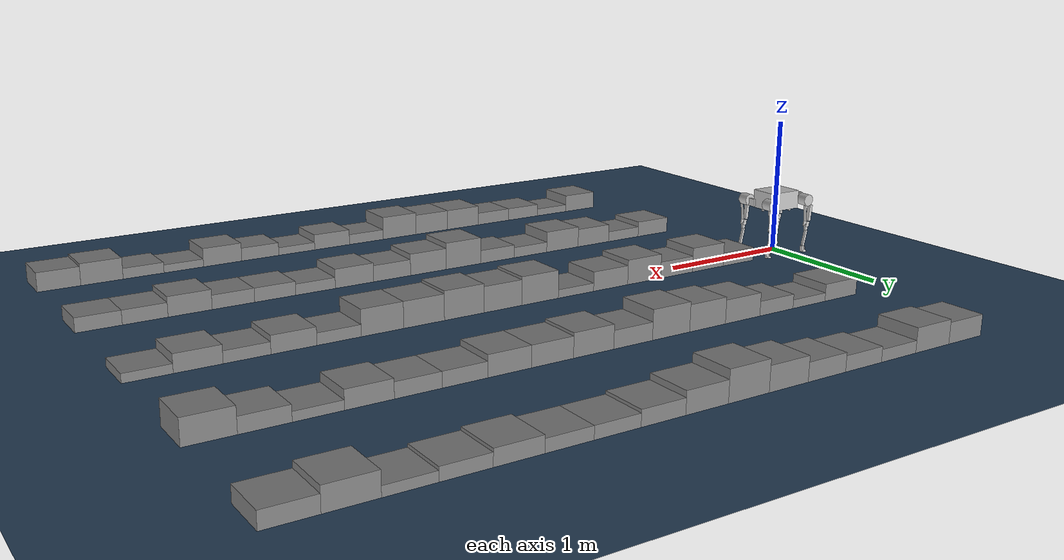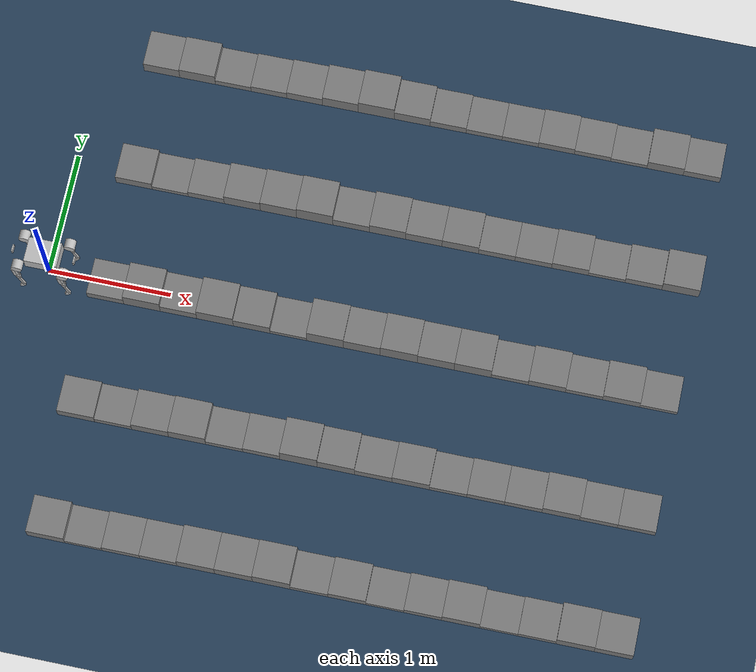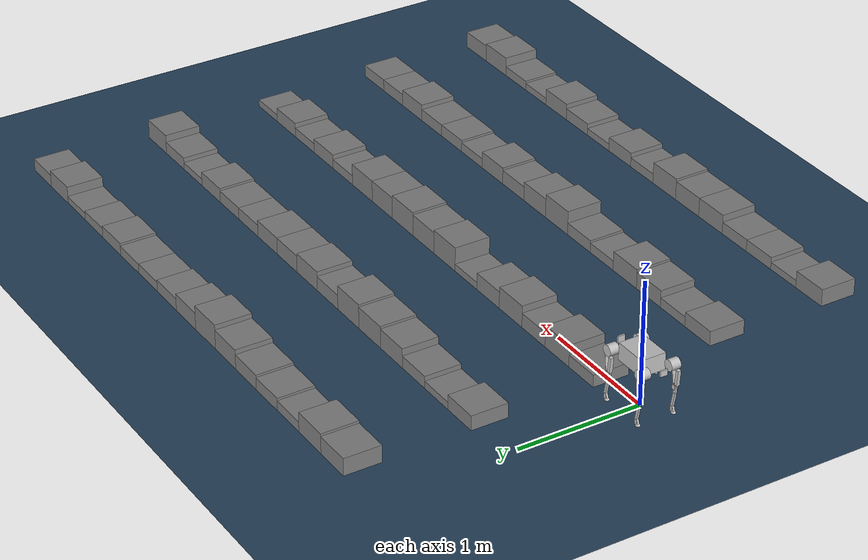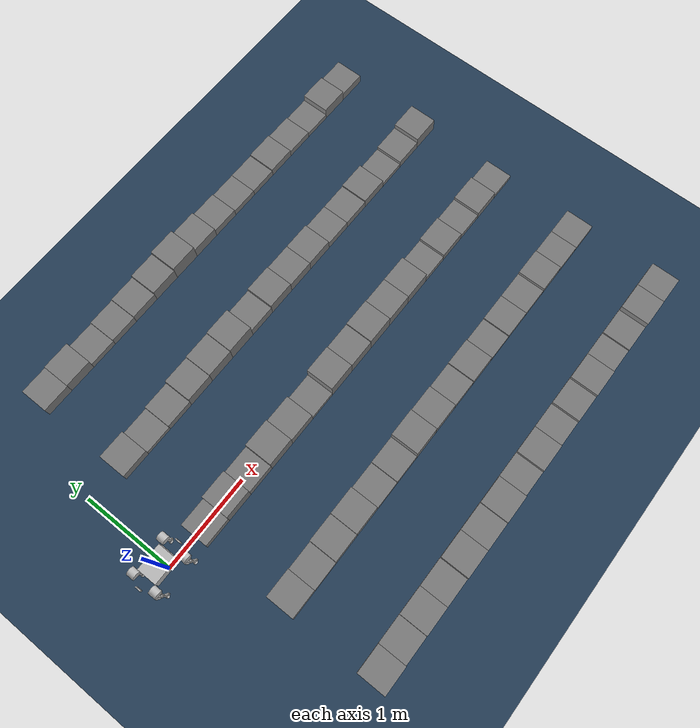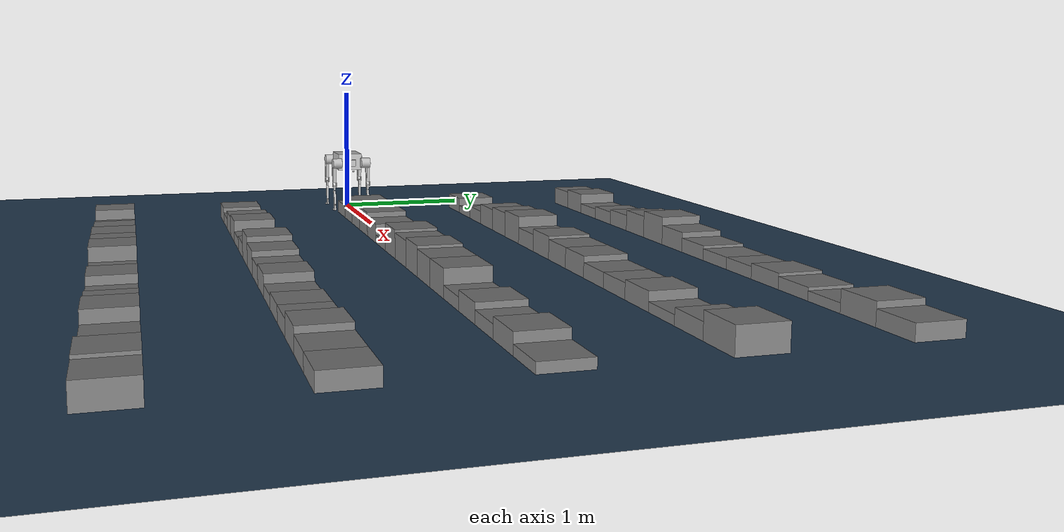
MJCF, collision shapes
<mujoco model="boxes">
  <include file="legbot.xml"/>

  <statistic center="0 0 0.1" extent="0.8"/>

  <visual>
    <headlight diffuse="0.6 0.6 0.6" ambient="0.3 0.3 0.3" specular="0 0 0"/>
    <rgba haze="0.15 0.25 0.35 1"/>
    <global azimuth="-130" elevation="-20"/>
  </visual>

  <asset>
    <texture type="skybox" builtin="gradient" rgb1="0.3 0.5 0.7" rgb2="0 0 0" width="512" height="3072"/>
    <texture type="2d" name="groundplane" builtin="checker" mark="edge" rgb1="0.2 0.3 0.4" rgb2="0.1 0.2 0.3" markrgb="0.8 0.8 0.8" width="300" height="300"/>
    <material name="groundplane" texture="groundplane" texuniform="true" texrepeat="5 5" reflectance="0.2"/>
  </asset>

  <worldbody>
    <light pos="0 0 1.5" dir="0 0 -1" directional="true"/>
    <geom name="floor" size="0 0 0.05" type="plane" material="groundplane"/>

    <!-- Rough terrain: dense bumps 3-10cm height -->
    <geom pos="0.5 -2.0 0.07" type="box" size="0.15 0.15 0.07"/>
    <geom pos="0.8 -2.0 0.03" type="box" size="0.15 0.15 0.03"/>
    <geom pos="1.1 -2.0 0.05" type="box" size="0.15 0.15 0.05"/>
    <geom pos="1.4 -2.0 0.05" type="box" size="0.15 0.15 0.05"/>
    <geom pos="1.7 -2.0 0.08" type="box" size="0.15 0.15 0.08"/>
    <geom pos="2.0 -2.0 0.08" type="box" size="0.15 0.15 0.08"/>
    <geom pos="2.3 -2.0 0.09" type="box" size="0.15 0.15 0.09"/>
    <geom pos="2.6 -2.0 0.04" type="box" size="0.15 0.15 0.04"/>
    <geom pos="2.9 -2.0 0.06" type="box" size="0.15 0.15 0.06"/>
    <geom pos="3.2 -2.0 0.03" type="box" size="0.15 0.15 0.03"/>
    <geom pos="3.5 -2.0 0.05" type="box" size="0.15 0.15 0.05"/>
    <geom pos="3.8 -2.0 0.07" type="box" size="0.15 0.15 0.07"/>
    <geom pos="4.1 -2.0 0.03" type="box" size="0.15 0.15 0.03"/>
    <geom pos="4.4 -2.0 0.04" type="box" size="0.15 0.15 0.04"/>
    <geom pos="4.7 -2.0 0.08" type="box" size="0.15 0.15 0.08"/>
    <geom pos="5.0 -2.0 0.07" type="box" size="0.15 0.15 0.07"/>

    <geom pos="0.5 -1.0 0.06" type="box" size="0.15 0.15 0.06"/>
    <geom pos="0.8 -1.0 0.04" type="box" size="0.15 0.15 0.04"/>
    <geom pos="1.1 -1.0 0.07" type="box" size="0.15 0.15 0.07"/>
    <geom pos="1.4 -1.0 0.08" type="box" size="0.15 0.15 0.08"/>
    <geom pos="1.7 -1.0 0.04" type="box" size="0.15 0.15 0.04"/>
    <geom pos="2.0 -1.0 0.05" type="box" size="0.15 0.15 0.05"/>
    <geom pos="2.3 -1.0 0.10" type="box" size="0.15 0.15 0.10"/>
    <geom pos="2.6 -1.0 0.08" type="box" size="0.15 0.15 0.08"/>
    <geom pos="2.9 -1.0 0.06" type="box" size="0.15 0.15 0.06"/>
    <geom pos="3.2 -1.0 0.07" type="box" size="0.15 0.15 0.07"/>
    <geom pos="3.5 -1.0 0.04" type="box" size="0.15 0.15 0.04"/>
    <geom pos="3.8 -1.0 0.05" type="box" size="0.15 0.15 0.05"/>
    <geom pos="4.1 -1.0 0.05" type="box" size="0.15 0.15 0.05"/>
    <geom pos="4.4 -1.0 0.07" type="box" size="0.15 0.15 0.07"/>
    <geom pos="4.7 -1.0 0.05" type="box" size="0.15 0.15 0.05"/>
    <geom pos="5.0 -1.0 0.05" type="box" size="0.15 0.15 0.05"/>

    <geom pos="0.5 0.0 0.05" type="box" size="0.15 0.15 0.05"/>
    <geom pos="0.8 0.0 0.09" type="box" size="0.15 0.15 0.09"/>
    <geom pos="1.1 0.0 0.06" type="box" size="0.15 0.15 0.06"/>
    <geom pos="1.4 0.0 0.09" type="box" size="0.15 0.15 0.09"/>
    <geom pos="1.7 0.0 0.07" type="box" size="0.15 0.15 0.07"/>
    <geom pos="2.0 0.0 0.03" type="box" size="0.15 0.15 0.03"/>
    <geom pos="2.3 0.0 0.10" type="box" size="0.15 0.15 0.10"/>
    <geom pos="2.6 0.0 0.09" type="box" size="0.15 0.15 0.09"/>
    <geom pos="2.9 0.0 0.10" type="box" size="0.15 0.15 0.10"/>
    <geom pos="3.2 0.0 0.09" type="box" size="0.15 0.15 0.09"/>
    <geom pos="3.5 0.0 0.09" type="box" size="0.15 0.15 0.09"/>
    <geom pos="3.8 0.0 0.04" type="box" size="0.15 0.15 0.04"/>
    <geom pos="4.1 0.0 0.06" type="box" size="0.15 0.15 0.06"/>
    <geom pos="4.4 0.0 0.04" type="box" size="0.15 0.15 0.04"/>
    <geom pos="4.7 0.0 0.06" type="box" size="0.15 0.15 0.06"/>
    <geom pos="5.0 0.0 0.03" type="box" size="0.15 0.15 0.03"/>

    <geom pos="0.5 1.0 0.06" type="box" size="0.15 0.15 0.06"/>
    <geom pos="0.8 1.0 0.03" type="box" size="0.15 0.15 0.03"/>
    <geom pos="1.1 1.0 0.05" type="box" size="0.15 0.15 0.05"/>
    <geom pos="1.4 1.0 0.08" type="box" size="0.15 0.15 0.08"/>
    <geom pos="1.7 1.0 0.09" type="box" size="0.15 0.15 0.09"/>
    <geom pos="2.0 1.0 0.10" type="box" size="0.15 0.15 0.10"/>
    <geom pos="2.3 1.0 0.06" type="box" size="0.15 0.15 0.06"/>
    <geom pos="2.6 1.0 0.08" type="box" size="0.15 0.15 0.08"/>
    <geom pos="2.9 1.0 0.07" type="box" size="0.15 0.15 0.07"/>
    <geom pos="3.2 1.0 0.07" type="box" size="0.15 0.15 0.07"/>
    <geom pos="3.5 1.0 0.05" type="box" size="0.15 0.15 0.05"/>
    <geom pos="3.8 1.0 0.05" type="box" size="0.15 0.15 0.05"/>
    <geom pos="4.1 1.0 0.06" type="box" size="0.15 0.15 0.06"/>
    <geom pos="4.4 1.0 0.03" type="box" size="0.15 0.15 0.03"/>
    <geom pos="4.7 1.0 0.05" type="box" size="0.15 0.15 0.05"/>
    <geom pos="5.0 1.0 0.08" type="box" size="0.15 0.15 0.08"/>

    <geom pos="0.5 2.0 0.07" type="box" size="0.15 0.15 0.07"/>
    <geom pos="0.8 2.0 0.08" type="box" size="0.15 0.15 0.08"/>
    <geom pos="1.1 2.0 0.04" type="box" size="0.15 0.15 0.04"/>
    <geom pos="1.4 2.0 0.05" type="box" size="0.15 0.15 0.05"/>
    <geom pos="1.7 2.0 0.06" type="box" size="0.15 0.15 0.06"/>
    <geom pos="2.0 2.0 0.08" type="box" size="0.15 0.15 0.08"/>
    <geom pos="2.3 2.0 0.10" type="box" size="0.15 0.15 0.10"/>
    <geom pos="2.6 2.0 0.07" type="box" size="0.15 0.15 0.07"/>
    <geom pos="2.9 2.0 0.05" type="box" size="0.15 0.15 0.05"/>
    <geom pos="3.2 2.0 0.04" type="box" size="0.15 0.15 0.04"/>
    <geom pos="3.5 2.0 0.04" type="box" size="0.15 0.15 0.04"/>
    <geom pos="3.8 2.0 0.05" type="box" size="0.15 0.15 0.05"/>
    <geom pos="4.1 2.0 0.04" type="box" size="0.15 0.15 0.04"/>
    <geom pos="4.4 2.0 0.03" type="box" size="0.15 0.15 0.03"/>
    <geom pos="4.7 2.0 0.07" type="box" size="0.15 0.15 0.07"/>
    <geom pos="5.0 2.0 0.05" type="box" size="0.15 0.15 0.05"/>
  </worldbody>
</mujoco>

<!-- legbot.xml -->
<mujoco model="legbot">
  <compiler angle="radian" meshdir="meshes/" />
  <option cone="elliptic" impratio="100" />
  <default>
    <material specular="0" shininess="0.25"/>
    <default class="vita">
      <geom friction="0.4" margin="0.001" condim="3" />
      <joint axis="0 1 0" damping="0.1" armature="0.0043" frictionloss="0.2" />
      <motor forcerange="-16 16" />
      <default class="R_hip_joint">
        <joint
                    axis="1 0 0"
                    range="-0.73304 0.73304"
                    actuatorfrcrange="-16 16"
                    limited="true"
                />
      </default>
      <default class="L_hip_joint">
        <joint
                    axis="1 0 0"
                    range="-0.73304 0.73304"
                    actuatorfrcrange="-16 16"
                    limited="true"
                />
      </default>
      <default class="F_thigh_joint">
        <joint range="-1.559 3.1298" actuatorfrcrange="-16 16" limited="true" />
      </default>
      <default class="R_thigh_joint">
        <joint
                    range="-0.51181 4.177"
                    actuatorfrcrange="-16 16"
                    limited="true"
                />
      </default>
      <default class="calf_joint">
        <joint
                    range="-2.6387 -0.7854"
                    actuatorfrcrange="-32 32"
                    limited="true"
                    damping="0.1"
                    armature="0.04"
                    frictionloss="0.2"
                />
        <motor forcerange="-32 32" />
      </default>
      <default class="visual">
        <geom type="mesh" contype="0" conaffinity="0" group="2" density="0" />
      </default>
      <default class="collision">
        <geom group="3" rgba="0.752941 0.752941 0.752941 1" />
        <default class="foot">
          <geom size="0.021" quat="0.707107 -0.707107 0 0" pos="0 0 0" />
        </default>
      </default>
    </default>
  </default>
  <asset>
    <mesh name="base_link" file="base_link.STL" />
    <mesh name="FR_hip" file="FR_hip.STL" />
    <mesh name="FR_thigh" file="FR_thigh.STL" />
    <mesh name="FR_calf" file="FR_calf.STL" />
    <mesh name="FR_foot" file="FR_foot.STL" />
    <mesh name="FL_hip" file="FL_hip.STL" />
    <mesh name="FL_thigh" file="FL_thigh.STL" />
    <mesh name="FL_calf" file="FL_calf.STL" />
    <mesh name="FL_foot" file="FL_foot.STL" />
    <mesh name="RR_hip" file="RR_hip.STL" />
    <mesh name="RR_thigh" file="RR_thigh.STL" />
    <mesh name="RR_calf" file="RR_calf.STL" />
    <mesh name="RR_foot" file="RR_foot.STL" />
    <mesh name="RL_hip" file="RL_hip.STL" />
    <mesh name="RL_thigh" file="RL_thigh.STL" />
    <mesh name="RL_calf" file="RL_calf.STL" />
    <mesh name="RL_foot" file="RL_foot.STL" />
  </asset>
  <worldbody>
    <light name="spotlight" mode="targetbodycom" target="base" pos="0 -1 2" cutoff="30"/>

    <body name="base" pos="0 0 0.4" childclass="vita">
      <inertial
                pos="-0.005 0 0"
                mass="6.583964"
                fullinertia="0.044277 0.105409 0.091875 -0.000146 -0.024292 -0.000032"
            />
      <freejoint name="joint_fixed_world" />
      <site name="trunk_imu" pos="0 0 0" />
        <geom
                type="mesh"
                rgba="0.752941 0.752941 0.752941 1"
                mesh="base_link"
                class="visual"
            />
      <geom
                name="collision_middle_box"
                size="0.133329 0.101205 0.068913"
                pos="0 0 0.004583"
                type="box"
                class="collision"
            />
      <geom
                name="collision_front_dangban_box"
                size="0.0058255 0.029011 0.029011"
                pos="0.247938 0 0.006492"
                type="box"
                class="collision"
            />
      <geom
                name="collision_back_dangban_box"
                size="0.0058255 0.029011 0.023818"
                pos="-0.249278 0 0.006492"
                type="box"
                class="collision"
            />
      <geom
                name="collision_low_bar_FL_box"
                size="0.008 0.008 0.0065"
                pos="0.083 0.042 -0.086"
                type="box"
                class="collision"
            />
      <geom
                name="collision_low_bar_FR_box"
                size="0.008 0.008 0.0065"
                pos="0.083 -0.042 -0.086"
                type="box"
                class="collision"
            />
      <geom
                name="collision_low_bar_RL_box"
                size="0.008 0.008 0.0065"
                pos="-0.108 0.042 -0.086"
                type="box"
                class="collision"
            />
      <geom
                name="collision_low_bar_RR_box"
                size="0.008 0.008 0.0065"
                pos="-0.108 -0.042 -0.086"
                type="box"
                class="collision"
            />
      <body name="FR_hip" pos="0.18453 -0.051 0">
        <inertial
                    pos="-0.027882 0.015355 0"
                    quat="-0.137609 0.678417 0.233155 0.682973"
                    mass="0.079643"
                    diaginertia="8.72171e-05 7.7874e-05 2.29089e-05"
                />
        <joint name="FR_hip_joint" class="R_hip_joint" />
        <geom
                    type="mesh"
                    rgba="0.898039 0.917647 0.929412 1"
                    mesh="FR_hip"
                    class="visual"
                />
        <body name="FR_thigh" pos="0 -0.0975 0">
          <inertial
                        pos="-0.000498 0.038065 -0.024467"
                        quat="0.975282 -0.219111 0.024734 0.0142991"
                        mass="1.55038"
                        diaginertia="0.00679074 0.00586921 0.00204705"
                    />
          <joint name="FR_thigh_joint" class="F_thigh_joint" />
          <geom
                        type="mesh"
                        rgba="0.498039 0.498039 0.498039 1"
                        mesh="FR_thigh"
                        class="visual"
                    />
          <geom
                        name="collision_mainlink_box"
                        size="0.0129095 0.013 0.06282"
                        pos="-0.029488 -0.000724 -0.10287"
                        quat="0.999071 0 -0.0430946 0"
                        type="box"
                        class="collision"
                    />
          <geom
                        name="collision_self_check_box"
                        size="0.00126 0.013 0.0627725"
                        pos="0.01289 -0.000372 -0.102949"
                        quat="0.997989 0 0.063395 0"
                        type="box"
                        class="collision"
                    />
          <geom
                        name="collision_motor_cylinder"
                        size="0.044 0.038455"
                        pos="0 0.02351 -0.000177"
                        quat="-0.707107 0.707107 0 0"
                        type="cylinder"
                        class="collision"
                    />
          <geom
                        name="collision_revo_left_box"
                        size="0.015 0.002 0.02"
                        pos="-0.00614 0.014268 -0.188644"
                        quat="0.995396 0 -0.0958456 0"
                        type="box"
                        class="collision"
                    />
          <geom
                        name="collision_revo_right_box"
                        size="0.015 0.002 0.02"
                        pos="-0.00614 -0.014448 -0.188644"
                        quat="0.995396 0 -0.0958456 0"
                        type="box"
                        class="collision"
                    />
          <body name="FR_calf" pos="0 0 -0.1985">
            <inertial
                            pos="0.00261631 0 -0.125302"
                            quat="0.706944 -0.0151852 -0.0151852 0.706944"
                            mass="0.183986"
                            diaginertia="0.00125035 0.0012368 3.55485e-05"
                        />
            <joint name="FR_calf_joint" class="calf_joint" />
            <geom
                            type="mesh"
                            rgba="0.498039 0.498039 0.498039 1"
                            mesh="FR_calf"
                            class="visual"
                        />
            <geom
                            name="collision_upper_box"
                            size="0.012 0.007644 0.0242675"
                            pos="0.018049 0 -0.186508"
                            quat="0.998889 0 0.047125 0"
                            type="box"
                            class="collision"
                        />
            <geom
                            size="0.01 0.009 0.06"
                            pos="0.00376 0 -0.099894"
                            quat="0.994686 0 -0.102956 0"
                            type="box"
                            class="collision"
                        />
            <geom
                            name="collision_lower_box"
                            size="0.014 0.007644 0.02"
                            pos="-0.005451 0 -0.017378"
                            quat="0.999978 0 0.00661145 0"
                            type="box"
                            class="collision"
                        />
            <geom
                            name="collision_backprotect_box"
                            size="0.002 0.007644 0.02"
                            pos="-0.001309 0 -0.175631"
                            quat="0.981769 0 0.19008 0"
                            type="box"
                            class="collision"
                        />
            <geom
                            pos="0 0 -0.214"
                            quat="1 0 0 0"
                            type="mesh"
                            rgba="0.498039 0.498039 0.498039 1"
                            mesh="FR_foot"
                            class="visual"
                        />
            <body name="FR_foot" pos="0 0 -0.214">
              <geom class="foot" name="FR" />
            </body>
          </body>
        </body>
      </body>
      <body name="FL_hip" pos="0.18453 0.051 0">
        <inertial
                    pos="-0.027882 -0.015355 0"
                    quat="0.137609 0.678417 -0.233155 0.682973"
                    mass="0.079643"
                    diaginertia="8.72171e-05 7.7874e-05 2.29089e-05"
                />
        <joint name="FL_hip_joint" class="L_hip_joint" />
        <geom type="mesh" rgba="1 1 1 1" mesh="FL_hip" class="visual" />
        <body name="FL_thigh" pos="0 0.0975 0">
          <inertial
                        pos="-0.000498 -0.038065 -0.024467"
                        quat="0.975282 0.219111 0.024734 -0.0142991"
                        mass="1.55038"
                        diaginertia="0.00679074 0.00586921 0.00204705"
                    />
          <joint name="FL_thigh_joint" class="F_thigh_joint" />
          <geom
                        type="mesh"
                        rgba="0.498039 0.498039 0.498039 1"
                        mesh="FL_thigh"
                        class="visual"
                    />
          <geom
                        size="0.0129095 0.013 0.06282"
                        pos="-0.029488 0.000724 -0.10287"
                        quat="0.999071 0 -0.0430946 0"
                        type="box"
                        class="collision"
                    />
          <geom
                        size="0.00126 0.013 0.0627725"
                        pos="0.01289 0.000372 -0.102949"
                        quat="0.997989 0 0.063395 0"
                        type="box"
                        class="collision"
                    />
          <geom
                        size="0.044 0.038455"
                        pos="0 -0.02351 -0.000177"
                        quat="-0.707107 0.707107 0 0"
                        type="cylinder"
                        class="collision"
                    />
          <geom
                        size="0.015 0.002 0.02"
                        pos="-0.00614 -0.014268 -0.188644"
                        quat="0.995396 0 -0.0958456 0"
                        type="box"
                        class="collision"
                    />
          <geom
                        size="0.015 0.002 0.02"
                        pos="-0.00614 0.014448 -0.188644"
                        quat="0.995396 0 -0.0958456 0"
                        type="box"
                        class="collision"
                    />
          <body name="FL_calf" pos="0 0 -0.1985">
            <inertial
                            pos="0.00261631 0 -0.125302"
                            quat="0.706944 -0.0151852 -0.0151852 0.706944"
                            mass="0.183986"
                            diaginertia="0.00125035 0.0012368 3.55485e-05"
                        />
            <joint name="FL_calf_joint" class="calf_joint" />
            <geom
                            type="mesh"
                            rgba="0.498039 0.498039 0.498039 1"
                            mesh="FL_calf"
                            class="visual"
                        />
            <geom
                            size="0.012 0.007644 0.0242675"
                            pos="0.018049 0 -0.186508"
                            quat="0.998889 0 0.047125 0"
                            type="box"
                            class="collision"
                        />
            <geom
                            size="0.01 0.009 0.06"
                            pos="0.00376 0 -0.099894"
                            quat="0.994686 0 -0.102956 0"
                            type="box"
                            class="collision"
                        />
            <geom
                            size="0.014 0.007644 0.02"
                            pos="-0.005451 0 -0.017378"
                            quat="0.999978 0 0.00661145 0"
                            type="box"
                            class="collision"
                        />
            <geom
                            size="0.002 0.007644 0.02"
                            pos="-0.001309 0 -0.175631"
                            quat="0.981769 0 0.19008 0"
                            type="box"
                            class="collision"
                        />
            <geom
                            pos="0 0 -0.214"
                            quat="1 0 0 0"
                            type="mesh"
                            rgba="0.498039 0.498039 0.498039 1"
                            mesh="FL_foot"
                            class="visual"
                        />
            <body name="FL_foot" pos="0 0 -0.214">
              <geom class="foot" name="FL" />
            </body>
          </body>
        </body>
      </body>
      <body name="RR_hip" pos="-0.18453 -0.051 0">
        <inertial
                    pos="0.027882 0.015355 0"
                    quat="0.233155 0.682973 -0.137609 0.678417"
                    mass="0.079643"
                    diaginertia="8.72171e-05 7.7874e-05 2.29089e-05"
                />
        <joint name="RR_hip_joint" class="R_hip_joint" />
        <geom
                    type="mesh"
                    rgba="0.898039 0.917647 0.929412 1"
                    mesh="RR_hip"
                    class="visual"
                />
        <body name="RR_thigh" pos="0 -0.0975 0">
          <inertial
                        pos="-0.000498 0.038065 -0.024467"
                        quat="0.975282 -0.219111 0.024734 0.0142991"
                        mass="1.55038"
                        diaginertia="0.00679074 0.00586921 0.00204705"
                    />
          <joint name="RR_thigh_joint" class="R_thigh_joint" />
          <geom
                        type="mesh"
                        rgba="0.498039 0.498039 0.498039 1"
                        mesh="RR_thigh"
                        class="visual"
                    />
          <geom
                        size="0.0129095 0.013 0.06282"
                        pos="-0.029488 -0.000724 -0.10287"
                        quat="0.999071 0 -0.0430946 0"
                        type="box"
                        class="collision"
                    />
          <geom
                        size="0.00126 0.013 0.0627725"
                        pos="0.01289 -0.000372 -0.102949"
                        quat="0.997989 0 0.063395 0"
                        type="box"
                        class="collision"
                    />
          <geom
                        size="0.044 0.038455"
                        pos="0 0.02351 -0.000177"
                        quat="-0.707107 0.707107 0 0"
                        type="cylinder"
                        class="collision"
                    />
          <geom
                        size="0.015 0.002 0.02"
                        pos="-0.00614 0.014268 -0.188644"
                        quat="0.995396 0 -0.0958456 0"
                        type="box"
                        class="collision"
                    />
          <geom
                        size="0.015 0.002 0.02"
                        pos="-0.00614 -0.014448 -0.188644"
                        quat="0.995396 0 -0.0958456 0"
                        type="box"
                        class="collision"
                    />
          <body name="RR_calf" pos="0 0 -0.1985">
            <inertial
                            pos="0.00261631 0 -0.125302"
                            quat="0.706944 -0.0151852 -0.0151852 0.706944"
                            mass="0.183986"
                            diaginertia="0.00125035 0.0012368 3.55485e-05"
                        />
            <joint name="RR_calf_joint" class="calf_joint" />
            <geom
                            type="mesh"
                            rgba="0.498039 0.498039 0.498039 1"
                            mesh="RR_calf"
                            class="visual"
                        />
            <geom
                            size="0.012 0.007644 0.0242675"
                            pos="0.018049 0 -0.186508"
                            quat="0.998889 0 0.047125 0"
                            type="box"
                            class="collision"
                        />
            <geom
                            size="0.01 0.009 0.06"
                            pos="0.00376 0 -0.099894"
                            quat="0.994686 0 -0.102956 0"
                            type="box"
                            class="collision"
                        />
            <geom
                            size="0.014 0.007644 0.02"
                            pos="-0.005451 0 -0.017378"
                            quat="0.999978 0 0.00661145 0"
                            type="box"
                            class="collision"
                        />
            <geom
                            size="0.002 0.007644 0.02"
                            pos="-0.001309 0 -0.175631"
                            quat="0.981769 0 0.19008 0"
                            type="box"
                            class="collision"
                        />
            <geom
                            pos="0 0 -0.214"
                            quat="1 0 0 0"
                            type="mesh"
                            rgba="0.498039 0.498039 0.498039 1"
                            mesh="RR_foot"
                            class="visual"
                        />
            <body name="RR_foot" pos="0 0 -0.214">
              <geom class="foot" name="RR" />
            </body>
          </body>
        </body>
      </body>
      <body name="RL_hip" pos="-0.18453 0.051 0">
        <inertial
                    pos="0.027882 -0.015355 0"
                    quat="-0.233155 0.682973 0.137609 0.678417"
                    mass="0.079643"
                    diaginertia="8.72171e-05 7.7874e-05 2.29089e-05"
                />
        <joint name="RL_hip_joint" class="L_hip_joint" />
        <geom type="mesh" rgba="1 1 1 1" mesh="RL_hip" class="visual" />
        <body name="RL_thigh" pos="0 0.0975 0">
          <inertial
                        pos="-0.000498 -0.038065 -0.024467"
                        quat="0.975282 0.219111 0.024734 -0.0142991"
                        mass="1.55038"
                        diaginertia="0.00679074 0.00586921 0.00204705"
                    />
          <joint name="RL_thigh_joint" class="R_thigh_joint" />
          <geom
                        type="mesh"
                        rgba="0.498039 0.498039 0.498039 1"
                        mesh="RL_thigh"
                        class="visual"
                    />
          <geom
                        size="0.0129095 0.013 0.06282"
                        pos="-0.029488 0.000724 -0.10287"
                        quat="0.999071 0 -0.0430946 0"
                        type="box"
                        class="collision"
                    />
          <geom
                        size="0.00126 0.013 0.0627725"
                        pos="0.01289 0.000372 -0.102949"
                        quat="0.997989 0 0.063395 0"
                        type="box"
                        class="collision"
                    />
          <geom
                        size="0.044 0.038455"
                        pos="0 -0.02351 -0.000177"
                        quat="-0.707107 0.707107 0 0"
                        type="cylinder"
                        class="collision"
                    />
          <geom
                        size="0.015 0.002 0.02"
                        pos="-0.00614 -0.014268 -0.188644"
                        quat="0.995396 0 -0.0958456 0"
                        type="box"
                        class="collision"
                    />
          <geom
                        size="0.015 0.002 0.02"
                        pos="-0.00614 0.014448 -0.188644"
                        quat="0.995396 0 -0.0958456 0"
                        type="box"
                        class="collision"
                    />
          <body name="RL_calf" pos="0 0 -0.1985">
            <inertial
                            pos="0.00261631 0 -0.125302"
                            quat="0.706944 -0.0151852 -0.0151852 0.706944"
                            mass="0.183986"
                            diaginertia="0.00125035 0.0012368 3.55485e-05"
                        />
            <joint name="RL_calf_joint" class="calf_joint" />
            <geom
                            type="mesh"
                            rgba="0.498039 0.498039 0.498039 1"
                            mesh="RL_calf"
                            class="visual"
                        />
            <geom
                            size="0.012 0.007644 0.0242675"
                            pos="0.018049 0 -0.186508"
                            quat="0.998889 0 0.047125 0"
                            type="box"
                            class="collision"
                        />
            <geom
                            size="0.01 0.009 0.06"
                            pos="0.00376 0 -0.099894"
                            quat="0.994686 0 -0.102956 0"
                            type="box"
                            class="collision"
                        />
            <geom
                            size="0.014 0.007644 0.02"
                            pos="-0.005451 0 -0.017378"
                            quat="0.999978 0 0.00661145 0"
                            type="box"
                            class="collision"
                        />
            <geom
                            size="0.002 0.007644 0.02"
                            pos="-0.001309 0 -0.175631"
                            quat="0.981769 0 0.19008 0"
                            type="box"
                            class="collision"
                        />
            <geom
                            pos="0 0 -0.214"
                            quat="1 0 0 0"
                            type="mesh"
                            rgba="0.498039 0.498039 0.498039 1"
                            mesh="RL_foot"
                            class="visual"
                        />
            <body name="RL_foot" pos="0 0 -0.214">
              <geom class="foot" name="RL" />
            </body>
          </body>
        </body>
      </body>
    </body>
  </worldbody>
  <actuator>
    <!-- FR - 前右 -->
    <motor class="vita" name="FR_hip_joint" joint="FR_hip_joint" />
    <motor class="vita" name="FR_thigh_joint" joint="FR_thigh_joint" />
    <motor class="calf_joint" name="FR_calf_joint" joint="FR_calf_joint" />
    <!-- FL - 前左 -->
    <motor class="vita" name="FL_hip_joint" joint="FL_hip_joint" />
    <motor class="vita" name="FL_thigh_joint" joint="FL_thigh_joint" />
    <motor class="calf_joint" name="FL_calf_joint" joint="FL_calf_joint" />
    <!-- RR - 后右 -->
    <motor class="vita" name="RR_hip_joint" joint="RR_hip_joint" />
    <motor class="vita" name="RR_thigh_joint" joint="RR_thigh_joint" />
    <motor class="calf_joint" name="RR_calf_joint" joint="RR_calf_joint" />
    <!-- RL - 后左 -->
    <motor class="vita" name="RL_hip_joint" joint="RL_hip_joint" />
    <motor class="vita" name="RL_thigh_joint" joint="RL_thigh_joint" />
    <motor class="calf_joint" name="RL_calf_joint" joint="RL_calf_joint" />
  </actuator>
  <sensor>
    <!-- 关节位置传感器 - 按照与执行器相同的顺序排列 -->
    <!-- FR - 前右 -->
    <jointpos name="FR_hip_joint_pos" joint="FR_hip_joint" />
    <jointpos name="FR_thigh_joint_pos" joint="FR_thigh_joint" />
    <jointpos name="FR_calf_joint_pos" joint="FR_calf_joint" />
    <!-- FL - 前左 -->
    <jointpos name="FL_hip_joint_pos" joint="FL_hip_joint" />
    <jointpos name="FL_thigh_joint_pos" joint="FL_thigh_joint" />
    <jointpos name="FL_calf_joint_pos" joint="FL_calf_joint" />
    <!-- RR - 后右 -->
    <jointpos name="RR_hip_joint_pos" joint="RR_hip_joint" />
    <jointpos name="RR_thigh_joint_pos" joint="RR_thigh_joint" />
    <jointpos name="RR_calf_joint_pos" joint="RR_calf_joint" />
    <!-- RL - 后左 -->
    <jointpos name="RL_hip_joint_pos" joint="RL_hip_joint" />
    <jointpos name="RL_thigh_joint_pos" joint="RL_thigh_joint" />
    <jointpos name="RL_calf_joint_pos" joint="RL_calf_joint" />
    <!-- 关节速度传感器 - 按照与执行器相同的顺序排列 -->
    <!-- FR - 前右 -->
    <jointvel name="FR_hip_joint_vel" joint="FR_hip_joint" />
    <jointvel name="FR_thigh_joint_vel" joint="FR_thigh_joint" />
    <jointvel name="FR_calf_joint_vel" joint="FR_calf_joint" />
    <!-- FL - 前左 -->
    <jointvel name="FL_hip_joint_vel" joint="FL_hip_joint" />
    <jointvel name="FL_thigh_joint_vel" joint="FL_thigh_joint" />
    <jointvel name="FL_calf_joint_vel" joint="FL_calf_joint" />
    <!-- RR - 后右 -->
    <jointvel name="RR_hip_joint_vel" joint="RR_hip_joint" />
    <jointvel name="RR_thigh_joint_vel" joint="RR_thigh_joint" />
    <jointvel name="RR_calf_joint_vel" joint="RR_calf_joint" />
    <!-- RL - 后左 -->
    <jointvel name="RL_hip_joint_vel" joint="RL_hip_joint" />
    <jointvel name="RL_thigh_joint_vel" joint="RL_thigh_joint" />
    <jointvel name="RL_calf_joint_vel" joint="RL_calf_joint" />
    <!-- 关节力矩传感器 - 按照与执行器相同的顺序排列 -->
    <!-- FR - 前右 -->
    <jointactuatorfrc
            name="FR_hip_joint_torque"
            joint="FR_hip_joint"
            noise="0.01"
        />
    <jointactuatorfrc
            name="FR_thigh_joint_torque"
            joint="FR_thigh_joint"
            noise="0.01"
        />
    <jointactuatorfrc
            name="FR_calf_joint_torque"
            joint="FR_calf_joint"
            noise="0.01"
        />
    <!-- FL - 前左 -->
    <jointactuatorfrc
            name="FL_hip_joint_torque"
            joint="FL_hip_joint"
            noise="0.01"
        />
    <jointactuatorfrc
            name="FL_thigh_joint_torque"
            joint="FL_thigh_joint"
            noise="0.01"
        />
    <jointactuatorfrc
            name="FL_calf_joint_torque"
            joint="FL_calf_joint"
            noise="0.01"
        />
    <!-- RR - 后右 -->
    <jointactuatorfrc
            name="RR_hip_joint_torque"
            joint="RR_hip_joint"
            noise="0.01"
        />
    <jointactuatorfrc
            name="RR_thigh_joint_torque"
            joint="RR_thigh_joint"
            noise="0.01"
        />
    <jointactuatorfrc
            name="RR_calf_joint_torque"
            joint="RR_calf_joint"
            noise="0.01"
        />
    <!-- RL - 后左 -->
    <jointactuatorfrc
            name="RL_hip_joint_torque"
            joint="RL_hip_joint"
            noise="0.01"
        />
    <jointactuatorfrc
            name="RL_thigh_joint_torque"
            joint="RL_thigh_joint"
            noise="0.01"
        />
    <jointactuatorfrc
            name="RL_calf_joint_torque"
            joint="RL_calf_joint"
            noise="0.01"
        />
    <!-- IMU传感器 -->
    <framequat name="trunk_quat" objtype="site" objname="trunk_imu" />
    <gyro name="base_gyro" site="trunk_imu" />
    <accelerometer name="trunk_acc" site="trunk_imu" />
    <!-- 位置和速度传感器 -->
    <framepos name="trunk_pos" objtype="site" objname="trunk_imu" />
    <framelinvel name="base_linvel" objtype="site" objname="trunk_imu" />
  </sensor>
</mujoco>
